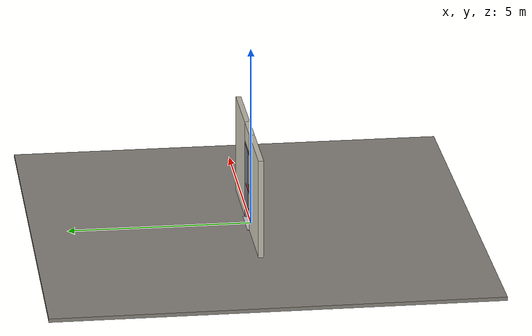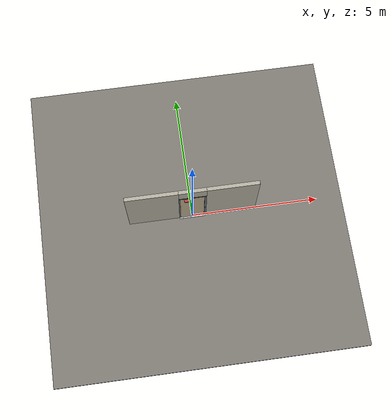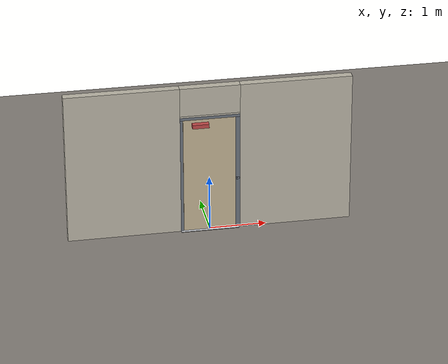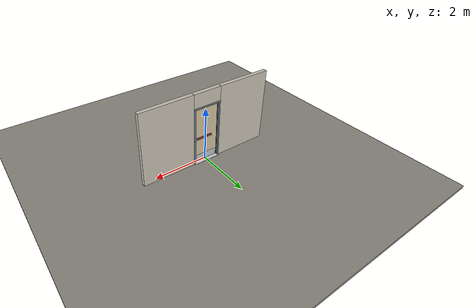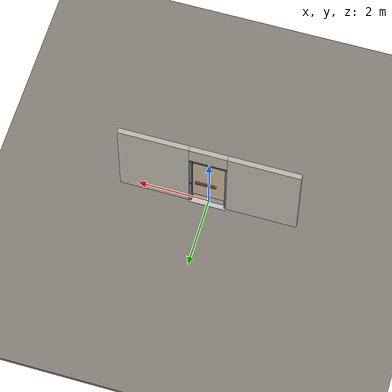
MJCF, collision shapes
<?xml version="1.0" ?>
<mujoco model="db0463_swing_single_simple">
  <compiler angle="radian" meshdir="../../hardware" texturedir="../../textures" autolimits="true" inertiafromgeom="false"/>
  <option timestep="0.002" integrator="implicitfast" cone="elliptic" impratio="10" noslip_iterations="3">
    <flag multiccd="enable"/>
  </option>
  <size memory="16M"/>
  <default>
    <geom condim="4" solref="0.005 1" solimp="0.95 0.99 0.001"/>
    <joint solreflimit="0.005 1" solimplimit="0.95 0.99 0.001"/>
    <tendon solreflimit="0.005 1"/>
    <equality solref="0.002 1"/>
  </default>
  <visual>
    <headlight ambient="0.4 0.4 0.4" diffuse="0.7 0.7 0.7" specular="0.2 0.2 0.2"/>
    <quality shadowsize="4096"/>
    <map znear="0.01" zfar="60"/>
  </visual>
  <asset>
    <mesh name="closer_body_fdc4667657" file="closer_body_fdc4667657.obj"/>
    <mesh name="hinge_e22b26c0c1" file="hinge_e22b26c0c1.obj"/>
    <mesh name="hinge_jamb_e1d088f8dc" file="hinge_jamb_e1d088f8dc.obj"/>
    <mesh name="touchbar_pad_5c88f1c24f" file="touchbar_pad_5c88f1c24f.obj"/>
    <material name="mat_floor" rgba="0.55 0.53 0.5 1" specular="0.2" shininess="0.15" reflectance="0"/>
    <material name="mat_wall" rgba="0.78 0.76 0.7 1" specular="0.2" shininess="0.1" reflectance="0"/>
    <material name="mat_leaf" rgba="0.82 0.75 0.62 1" specular="0.23" shininess="0.53" reflectance="0.02"/>
    <material name="mat_leaf_louver" rgba="0.697 0.637 0.527 1" specular="0.2" shininess="0.4" reflectance="0"/>
    <material name="mat_hinge" rgba="0.65 0.66 0.68 1" specular="0.74" shininess="0.5" reflectance="0.36"/>
    <material name="mat_op_stainless" rgba="0.75 0.76 0.77 1" specular="0.8" shininess="0.65" reflectance="0.4"/>
    <material name="mat_bolt" rgba="0.75 0.76 0.77 1" specular="0.8" shininess="0.65" reflectance="0.4"/>
    <material name="mat_frame" rgba="0.45 0.48 0.52 1" specular="0.32" shininess="0.6" reflectance="0.08"/>
    <material name="mat_seal" rgba="0.1 0.1 0.1 1" specular="0.2" shininess="0.1" reflectance="0"/>
    <material name="mat_threshold" rgba="0.8 0.81 0.83 1" specular="0.8" shininess="0.6" reflectance="0.4"/>
    <material name="mat_closer" rgba="0.22 0.17 0.13 1" specular="0.8" shininess="0.6" reflectance="0.4"/>
    <material name="mat_kick" rgba="0.75 0.76 0.77 1" specular="0.8" shininess="0.65" reflectance="0.4"/>
    <material name="mat_exit_sign" rgba="0.85 0.1 0.1 1" specular="0.2" shininess="0.6" reflectance="0"/>
    <material name="mat_sign_bracket" rgba="0.8 0.81 0.83 1" specular="0.8" shininess="0.6" reflectance="0.4"/>
    <material name="mat_placard" rgba="0.95 0.75 0.05 1" specular="0.2" shininess="0.5" reflectance="0"/>
    <texture name="skybox" type="skybox" builtin="gradient" rgb1="0.6 0.7 0.85" rgb2="0.9 0.92 0.95" width="256" height="256"/>
  </asset>
  <worldbody>
    <light name="sun" pos="1.5 -2.5 4" dir="-0.3 0.5 -0.8" directional="true" diffuse="0.8 0.8 0.8" specular="0.3 0.3 0.3" castshadow="true"/>
    <light name="fill" pos="-1.5 2.5 3" dir="0.3 -0.5 -0.7" directional="true" diffuse="0.35 0.35 0.4" castshadow="false"/>
    <camera name="robot_view" pos="0 -2.594313 1.812087" xyaxes="1 0 0 0 0.26963 0.962964" fovy="52"/>
    <camera name="far_view" pos="0 2.681312 1.812087" xyaxes="-1 0 0 0 -0.26963 0.962964" fovy="52"/>
    <camera name="iso" pos="2.004737 -2.172262 2.234138" xyaxes="0.741536 0.670913 0 -0.242917 0.268487 0.932151" fovy="46"/>
    <camera name="detail_handle" pos="0.5335 -0.7565 1.245" xyaxes="0.97561 0.219512 0 -0.070934 0.315262 0.94635" fovy="38"/>
    <geom name="floor" type="box" size="6 6 0.05" pos="0 0 -0.05" material="mat_floor" group="0" contype="1" conaffinity="1" friction="0.8 0.005 0.0001" density="2400"/>
    <geom name="wall_left" type="box" size="0.99475 0.0725 1.3735" pos="-1.50525 0.0435 1.3735" material="mat_wall" group="0" contype="1" conaffinity="1" friction="0.6 0.005 0.0001" density="800"/>
    <geom name="wall_right" type="box" size="0.97975 0.0725 1.3735" pos="1.52025 0.0435 1.3735" material="mat_wall" group="0" contype="1" conaffinity="1" friction="0.6 0.005 0.0001" density="800"/>
    <geom name="wall_header" type="box" size="0.5255 0.0725 0.26" pos="0.015 0.0435 2.487" material="mat_wall" group="0" contype="1" conaffinity="1" friction="0.6 0.005 0.0001" density="800"/>
    <geom name="hinge_0_jamb" type="mesh" mesh="hinge_jamb_e1d088f8dc" pos="-0.4575 -0.029 0.259" material="mat_hinge" group="1" contype="0" conaffinity="0" density="7850"/>
    <geom name="hinge_1_jamb" type="mesh" mesh="hinge_jamb_e1d088f8dc" pos="-0.4575 -0.029 0.827" material="mat_hinge" group="1" contype="0" conaffinity="0" density="7850"/>
    <geom name="hinge_2_jamb" type="mesh" mesh="hinge_jamb_e1d088f8dc" pos="-0.4575 -0.029 1.395" material="mat_hinge" group="1" contype="0" conaffinity="0" density="7850"/>
    <geom name="hinge_3_jamb" type="mesh" mesh="hinge_jamb_e1d088f8dc" pos="-0.4575 -0.029 1.963" material="mat_hinge" group="1" contype="0" conaffinity="0" density="7850"/>
    <geom name="jamb_hinge" type="box" size="0.025 0.0725 1.0735" pos="-0.4855 0.0435 1.0735" material="mat_frame" group="0" contype="1" conaffinity="1" friction="0.6 0.005 0.0001" density="300"/>
    <geom name="strike_965_wall_n" type="box" size="0.04 0.05325 0.018" pos="0.5005 0.06275 0.965" material="mat_frame" group="0" contype="1" conaffinity="1" friction="0.6 0.005 0.0001" density="300"/>
    <geom name="strike_965_wall_p" type="box" size="0.04 0.008 0.018" pos="0.5005 -0.0175 0.965" material="mat_frame" group="0" contype="1" conaffinity="1" friction="0.6 0.005 0.0001" density="300"/>
    <geom name="strike_965_ramp" type="box" size="0.04 0.018028 0.018" pos="0.503782 -0.018312 0.965" quat="0.957092 0 0 0.289784" material="mat_frame" group="0" contype="1" conaffinity="1" friction="0.12 0.005 0.0001" density="300"/>
    <geom name="strike_965_back" type="box" size="0.0285 0.0095 0.018" pos="0.512 0 0.965" material="mat_frame" group="0" contype="1" conaffinity="1" friction="0.6 0.005 0.0001" density="300"/>
    <geom name="jamb_strike_0" type="box" size="0.04 0.0725 0.4735" pos="0.5005 0.0435 0.4735" material="mat_frame" group="0" contype="1" conaffinity="1" friction="0.6 0.005 0.0001" density="300"/>
    <geom name="jamb_strike_1" type="box" size="0.04 0.0725 0.582" pos="0.5005 0.0435 1.565" material="mat_frame" group="0" contype="1" conaffinity="1" friction="0.6 0.005 0.0001" density="300"/>
    <geom name="jamb_head" type="box" size="0.5255 0.0725 0.025" pos="0.015 0.0435 2.172" material="mat_frame" group="0" contype="1" conaffinity="1" friction="0.6 0.005 0.0001" density="300"/>
    <geom name="head_stud" type="box" size="0.5255 0.0725 0.015" pos="0.015 0.0435 2.212" material="mat_wall" group="0" contype="1" conaffinity="1" friction="0.6 0.005 0.0001" density="500"/>
    <geom name="stop_hinge" type="box" size="0.0055 0.016 1.0735" pos="-0.455 0.0385 1.0735" material="mat_frame" group="0" contype="1" conaffinity="1" friction="0.6 0.005 0.0001" density="300"/>
    <geom name="stop_strike" type="box" size="0.0055 0.016 1.0735" pos="0.455 0.0385 1.0735" material="mat_frame" group="0" contype="1" conaffinity="1" friction="0.6 0.005 0.0001" density="300"/>
    <geom name="stop_head" type="box" size="0.4605 0.016 0.0055" pos="0 0.0385 2.1415" material="mat_frame" group="0" contype="1" conaffinity="1" friction="0.6 0.005 0.0001" density="300"/>
    <geom name="seal_hinge" type="box" size="0.004 0.0025 1.0735" pos="-0.4575 0.0245 1.0735" material="mat_seal" group="1" contype="0" conaffinity="0" density="1100"/>
    <geom name="seal_strike" type="box" size="0.004 0.0025 1.0735" pos="0.4575 0.0245 1.0735" material="mat_seal" group="1" contype="0" conaffinity="0" density="1100"/>
    <geom name="seal_head" type="box" size="0.4405 0.0025 0.008" pos="0 0.0245 2.135" material="mat_seal" group="1" contype="0" conaffinity="0" density="1100"/>
    <geom name="threshold" type="box" size="0.5105 0.1225 0.004" pos="0 0.0435 0.004" material="mat_threshold" group="0" contype="1" conaffinity="1" friction="0.6 0.005 0.0001" density="2700"/>
    <site name="approach_point" pos="0 -1.5 0" quat="1 0 0 0" size="0.05" rgba="0.2 0.9 0.2 0.5" group="4"/>
    <site name="goal_point" pos="0 1.5 0" quat="1 0 0 0" size="0.05" rgba="0.2 0.9 0.2 0.5" group="4"/>
    <site name="door_plane_center" pos="0 0 1.0735" quat="1 0 0 0" size="0.02" rgba="0.2 0.9 0.2 0.5" group="4"/>
    <body name="leaf" pos="-0.4605 0 0">
      <inertial pos="0.420343 -0.014324 1.250418" mass="56.222561" quat="-0.495843 0.470945 0.514438 0.517402" diaginertia="3.390006294 27.583910088 30.877153888"/>
      <joint name="leaf_hinge" type="hinge" axis="0 0 -1" pos="0.003 -0.029 0" limited="true" range="0 1.570796" solreflimit="0.02 1" damping="12.268966" frictionloss="2.029429" stiffness="13.190762" springref="-2.424424" armature="0.02"/>
      <geom name="leaf_slab" type="box" size="0.457 0.022 1.067" pos="0.46 0 1.076" material="mat_leaf" group="0" contype="1" conaffinity="1" friction="0.4 0.005 0.0001" density="1"/>
      <geom name="hinge_0" type="mesh" mesh="hinge_e22b26c0c1" pos="0.003 -0.029 0.259" material="mat_hinge" group="1" contype="0" conaffinity="0" density="7850"/>
      <geom name="hinge_1" type="mesh" mesh="hinge_e22b26c0c1" pos="0.003 -0.029 0.827" material="mat_hinge" group="1" contype="0" conaffinity="0" density="7850"/>
      <geom name="hinge_2" type="mesh" mesh="hinge_e22b26c0c1" pos="0.003 -0.029 1.395" material="mat_hinge" group="1" contype="0" conaffinity="0" density="7850"/>
      <geom name="hinge_3" type="mesh" mesh="hinge_e22b26c0c1" pos="0.003 -0.029 1.963" material="mat_hinge" group="1" contype="0" conaffinity="0" density="7850"/>
      <geom name="leaf_exit_device_rail" type="box" size="0.2942 0.006 0.025" pos="0.5428 0.028 0.965" material="mat_op_stainless" group="0" contype="1" conaffinity="1" friction="0.6 0.005 0.0001" density="3000"/>
      <geom name="leaf_exit_device_rail_end_n" type="box" size="0.01 0.0325 0.025" pos="0.2586 0.0545 0.965" material="mat_op_stainless" group="0" contype="1" conaffinity="1" friction="0.6 0.005 0.0001" density="3000"/>
      <geom name="leaf_exit_device_rail_end_p" type="box" size="0.01 0.0325 0.025" pos="0.827 0.0545 0.965" material="mat_op_stainless" group="0" contype="1" conaffinity="1" friction="0.6 0.005 0.0001" density="3000"/>
      <geom name="leaf_latch_bolt_faceplate" type="box" size="0.0006 0.014 0.028" pos="0.9164 0 0.965" material="mat_bolt" group="1" contype="0" conaffinity="0" density="8500"/>
      <geom name="closer_body" type="mesh" mesh="closer_body_fdc4667657" pos="0.3 -0.022 2.054" quat="0.707107 0.707107 0 0" material="mat_closer" group="1" contype="0" conaffinity="0" density="2000"/>
      <geom name="closer_body_col" type="box" size="0.145 0.05 0.035" pos="0.3 -0.072 2.054" material="mat_closer" group="3" contype="1" conaffinity="1" rgba="0.8 0.3 0.3 0.25" friction="0.6 0.005 0.0001" density="2000"/>
      <geom name="kick_plate_p" type="box" size="0.427 0.0008 0.125" pos="0.46 0.0228 0.144" material="mat_kick" group="2" contype="0" conaffinity="0" density="7900"/>
      <site name="leaf_edge_mid" pos="0.917 0 1.067" quat="1 0 0 0" size="0.02" rgba="0.2 0.9 0.2 0.5" group="4"/>
      <body name="leaf_exit_device" pos="0.5428 0.022 0.965">
        <inertial pos="0 0.05 0" mass="4.39344" quat="0 0 0.707107 0.707107" diaginertia="0.001070901 0.108041192 0.108453077"/>
        <joint name="leaf_exit_device_slide" type="slide" axis="0 -1 0" limited="true" range="0 0.016" damping="153.70715" frictionloss="0.5" stiffness="1300" springref="-0.015385" armature="0.15"/>
        <geom name="leaf_exit_device_pad" type="mesh" mesh="touchbar_pad_5c88f1c24f" pos="0 0 0" quat="-0.707107 0.707107 0 0" material="mat_op_stainless" group="1" contype="0" conaffinity="0" density="3000"/>
        <geom name="leaf_exit_device_pad_col" type="box" size="0.2712 0.015 0.0225" pos="0 0.05 0" material="mat_op_stainless" group="3" contype="1" conaffinity="1" rgba="0.8 0.3 0.3 0.25" friction="0.8 0.01 0.0001" density="3000"/>
        <site name="leaf_exit_device_push" pos="0 0.065 0" quat="1 0 0 0" size="0.015" rgba="0.2 0.9 0.2 0.5" group="4"/>
      </body>
      <body name="leaf_latch_bolt" pos="0.917 0 0.965">
        <inertial pos="-0.0055 0 0" mass="0.074627" quat="0.92388 -0.382683 0 0" diaginertia="0.000002271 0.000013255 0.000013255"/>
        <joint name="leaf_latch_bolt_slide" type="slide" axis="-1 0 0" limited="true" range="0 0.019" damping="2" frictionloss="0.3" stiffness="550" springref="-0.01" armature="0.1"/>
        <geom name="leaf_latch_bolt_capsule" type="capsule" size="0.008 0.0165" pos="-0.0055 0 0" quat="0.707107 0 0.707107 0" material="mat_bolt" group="0" contype="1" conaffinity="1" friction="0.2 0.005 0.0001" density="8500"/>
      </body>
    </body>
  </worldbody>
  <tendon>
    <fixed name="leaf_latch_bolt_coupling" limited="true" range="0 10">
      <joint joint="leaf_latch_bolt_slide" coef="1"/>
      <joint joint="leaf_exit_device_slide" coef="-1.357143"/>
    </fixed>
  </tendon>
  <sensor>
    <jointpos name="leaf_hinge_pos" joint="leaf_hinge"/>
    <jointvel name="leaf_hinge_vel" joint="leaf_hinge"/>
    <jointpos name="leaf_exit_device_slide_pos" joint="leaf_exit_device_slide"/>
    <jointvel name="leaf_exit_device_slide_vel" joint="leaf_exit_device_slide"/>
    <jointpos name="leaf_latch_bolt_slide_pos" joint="leaf_latch_bolt_slide"/>
    <jointvel name="leaf_latch_bolt_slide_vel" joint="leaf_latch_bolt_slide"/>
  </sensor>
</mujoco>
